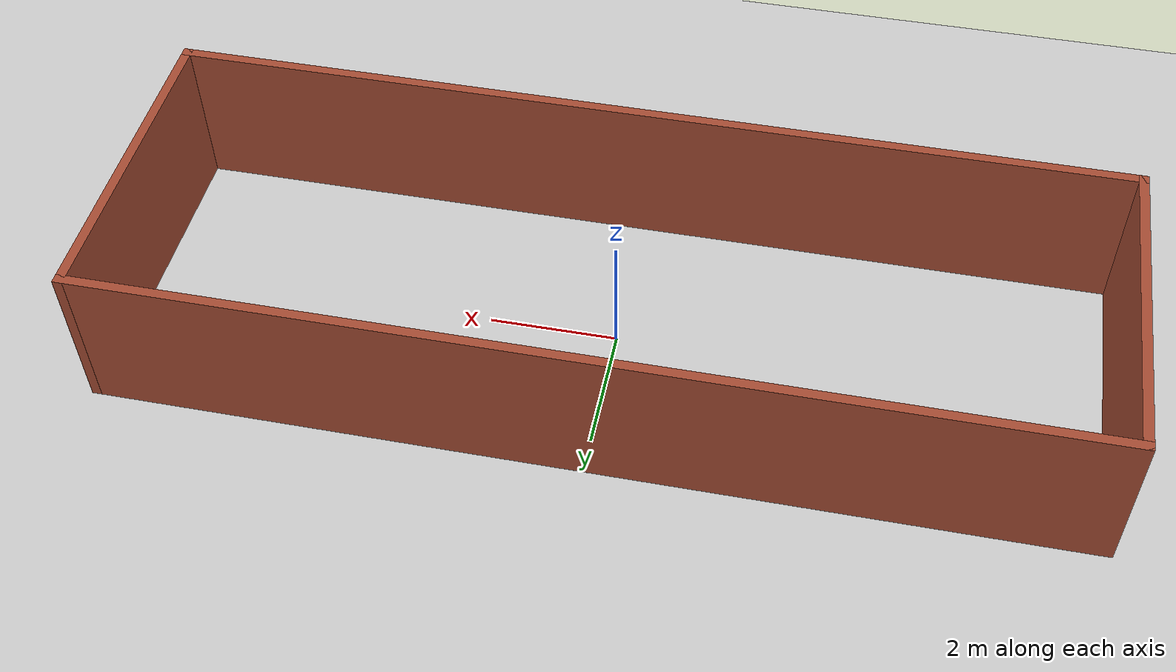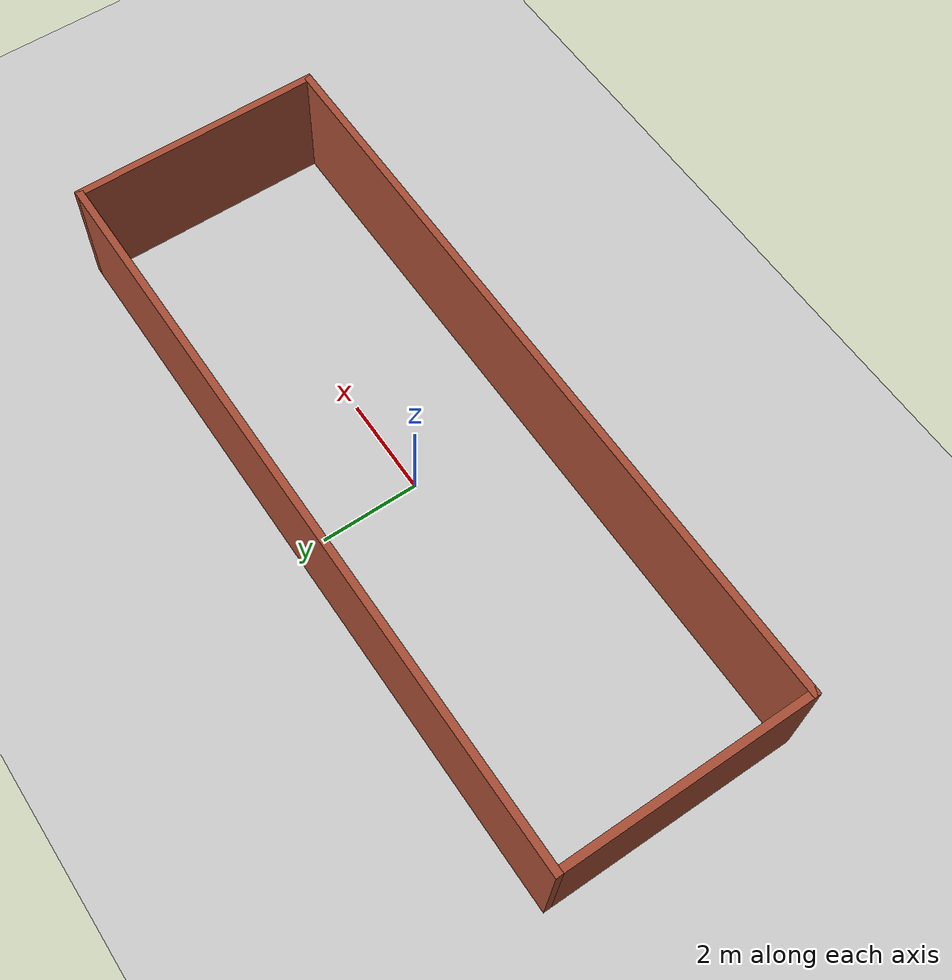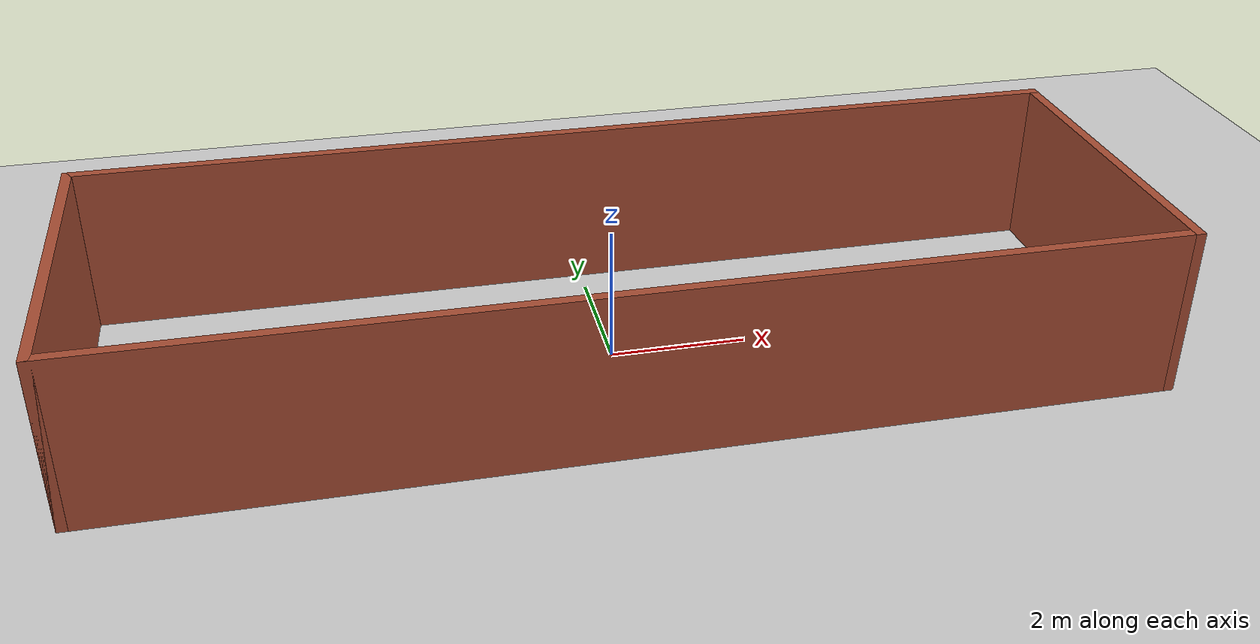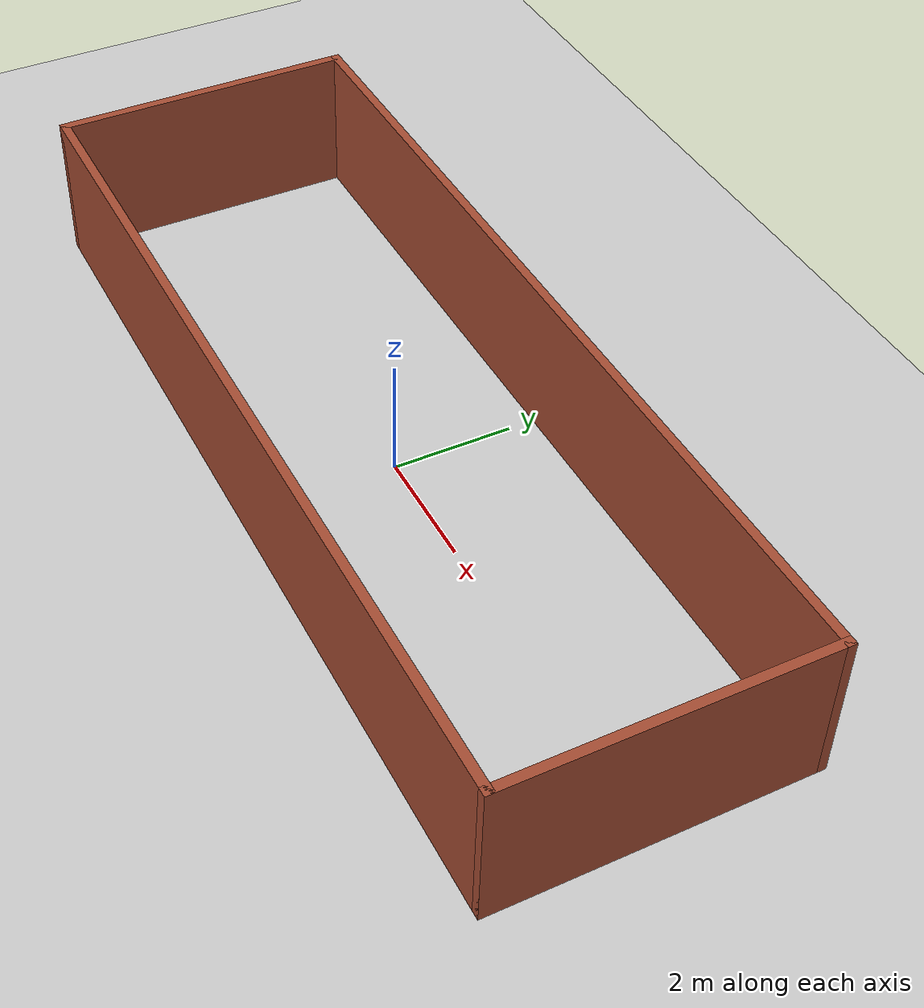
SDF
<?xml version="1.0" ?>
<sdf version="1.6">
  <world name="pasillo_grande">

    <include><uri>model://sun</uri></include>
    <include><uri>model://ground_plane</uri></include>

    <include>
      <uri>model://pasillo_grande</uri>
      <pose>0 0 0 0 0 0</pose>
    </include>

    <physics type="ode">
      <max_step_size>0.001</max_step_size>
      <real_time_update_rate>1000</real_time_update_rate>
    </physics>

  </world>
</sdf>

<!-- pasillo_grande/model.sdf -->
<sdf version='1.7'>
  <model name='pasillo_grande'>
    <pose>7.5 2.5 0 0 -0 0</pose>
    <link name='Wall_12'>
      <collision name='Wall_12_Collision'>
        <geometry>
          <box>
            <size>5.15 0.15 2.5</size>
          </box>
        </geometry>
        <pose>0 0 1.25 0 -0 0</pose>
      </collision>
      <visual name='Wall_12_Visual'>
        <pose>0 0 1.25 0 -0 0</pose>
        <geometry>
          <box>
            <size>5.15 0.15 2.5</size>
          </box>
        </geometry>
        <material>
          <script>
            <uri>file://media/materials/scripts/gazebo.material</uri>
            <name>Gazebo/Bricks</name>
          </script>
          <ambient>1 1 1 1</ambient>
        </material>
        <meta>
          <layer>0</layer>
        </meta>
      </visual>
      <pose>7.5 0 0 0 -0 1.5708</pose>
    </link>
    <link name='Wall_15'>
      <collision name='Wall_15_Collision'>
        <geometry>
          <box>
            <size>15.15 0.15 2.5</size>
          </box>
        </geometry>
        <pose>0 0 1.25 0 -0 0</pose>
      </collision>
      <visual name='Wall_15_Visual'>
        <pose>0 0 1.25 0 -0 0</pose>
        <geometry>
          <box>
            <size>15.15 0.15 2.5</size>
          </box>
        </geometry>
        <material>
          <script>
            <uri>file://media/materials/scripts/gazebo.material</uri>
            <name>Gazebo/Bricks</name>
          </script>
          <ambient>1 1 1 1</ambient>
        </material>
        <meta>
          <layer>0</layer>
        </meta>
      </visual>
      <pose>-0 2.5 0 0 -0 3.14159</pose>
    </link>
    <link name='Wall_17'>
      <collision name='Wall_17_Collision'>
        <geometry>
          <box>
            <size>5.15 0.15 2.5</size>
          </box>
        </geometry>
        <pose>0 0 1.25 0 -0 0</pose>
      </collision>
      <visual name='Wall_17_Visual'>
        <pose>0 0 1.25 0 -0 0</pose>
        <geometry>
          <box>
            <size>5.15 0.15 2.5</size>
          </box>
        </geometry>
        <material>
          <script>
            <uri>file://media/materials/scripts/gazebo.material</uri>
            <name>Gazebo/Bricks</name>
          </script>
          <ambient>1 1 1 1</ambient>
        </material>
        <meta>
          <layer>0</layer>
        </meta>
      </visual>
      <pose>-7.5 0 0 0 -0 -1.5708</pose>
    </link>
    <link name='Wall_19'>
      <collision name='Wall_19_Collision'>
        <geometry>
          <box>
            <size>15.15 0.15 2.5</size>
          </box>
        </geometry>
        <pose>0 0 1.25 0 -0 0</pose>
      </collision>
      <visual name='Wall_19_Visual'>
        <pose>0 0 1.25 0 -0 0</pose>
        <geometry>
          <box>
            <size>15.15 0.15 2.5</size>
          </box>
        </geometry>
        <material>
          <script>
            <uri>file://media/materials/scripts/gazebo.material</uri>
            <name>Gazebo/Bricks</name>
          </script>
          <ambient>1 1 1 1</ambient>
        </material>
        <meta>
          <layer>0</layer>
        </meta>
      </visual>
      <pose>-0 -2.5 0 0 -0 0</pose>
    </link>
    <static>1</static>
  </model>
</sdf>
